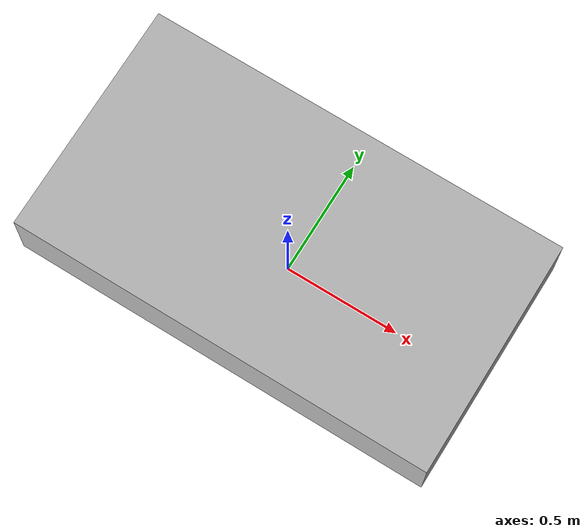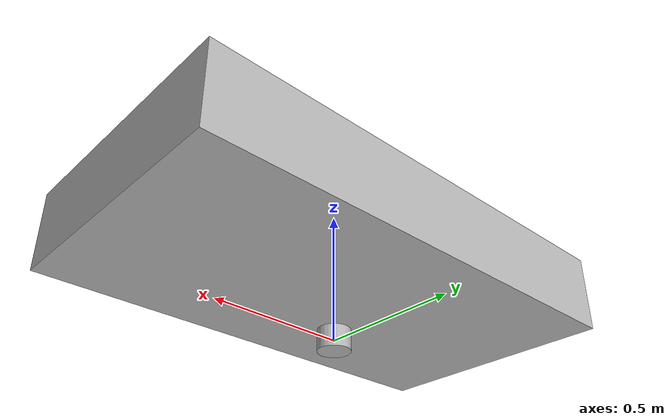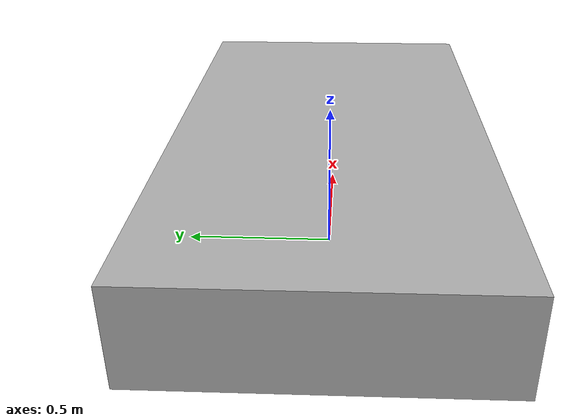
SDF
<?xml version="1.0" encoding="utf-8"?>
<sdf version="1.8">

  <model name="Evata">
    <pose>0 0 0 0 0 0</pose>

    <!-- Ana yer referans frame'i -->
    <link name="base_footprint">
      <pose>0 0 0 0 0 0</pose>
    </link>

    <!-- Araç gövde frame'i -->
    <link name="base_link">
      <pose>0 0 0 0 0 0</pose>

      <inertial>
        <mass>150</mass>
        <inertia>
          <ixx>1.0</ixx>
          <ixy>0.0</ixy>
          <ixz>0.0</ixz>
          <iyy>1.0</iyy>
          <iyz>0.0</iyz>
          <izz>1.0</izz>
        </inertia>
      </inertial>

      <!-- İstersen gövdeyi RViz/Gazebo'da görmek için basit kutu -->
      <visual name="base_visual">
        <pose>0 0 0.3 0 0 0</pose>
        <geometry>
          <box>
            <size>1.8 1.0 0.3</size>
          </box>
        </geometry>
      </visual>

      <collision name="base_collision">
        <pose>0 0 0.3 0 0 0</pose>
        <geometry>
          <box>
            <size>1.8 1.0 0.3</size>
          </box>
        </geometry>
      </collision>
    </link>

    <joint name="base_joint" type="fixed">
      <parent>base_footprint</parent>
      <child>base_link</child>
      <pose>0 0 0 0 0 0</pose>
    </joint>

    <!-- Robosense / RS Helios 32 LiDAR -->
    <!-- LiDAR yerden yüksekliği: 1.21 m -->
    <!-- IMU ile alt alta kabul edildi: x=-0.45, y=0 -->
    <link name="rslidar">
      <pose>0 0 0 0 0 0</pose>

      <inertial>
        <mass>0.2</mass>
        <inertia>
          <ixx>0.0001</ixx>
          <ixy>0.0</ixy>
          <ixz>0.0</ixz>
          <iyy>0.0001</iyy>
          <iyz>0.0</iyz>
          <izz>0.0001</izz>
        </inertia>
      </inertial>

      <visual name="rslidar_visual">
        <pose>0 0 0 0 0 0</pose>
        <geometry>
          <cylinder>
            <radius>0.06</radius>
            <length>0.08</length>
          </cylinder>
        </geometry>
      </visual>
    </link>

    <joint name="rslidar_joint" type="fixed">
      <parent>base_link</parent>
      <child>rslidar</child>

      <!-- base_link -> rslidar -->
      <pose>-0.45 0 1.21 0 0 0</pose>
    </joint>

    <!-- Microstrain 3DM-GX5-45 IMU -->
    <!-- IMU yerden yüksekliği: 0.92 m -->
    <!-- LiDAR ile alt alta kabul edildi: x=-0.45, y=0 -->
    <link name="imu_link">
      <pose>0 0 0 0 0 0</pose>

      <inertial>
        <mass>0.05</mass>
        <inertia>
          <ixx>0.00001</ixx>
          <ixy>0.0</ixy>
          <ixz>0.0</ixz>
          <iyy>0.00001</iyy>
          <iyz>0.0</iyz>
          <izz>0.00001</izz>
        </inertia>
      </inertial>

      <visual name="imu_visual">
        <pose>0 0 0 0 0 0</pose>
        <geometry>
          <box>
            <size>0.06 0.04 0.02</size>
          </box>
        </geometry>
      </visual>
    </link>

    <joint name="imu_joint" type="fixed">
      <parent>base_link</parent>
      <child>imu_link</child>

      <!-- base_link -> imu_link -->
      <pose>-0.45 0 0.92 0 0 0</pose>
    </joint>

  </model>
</sdf>
